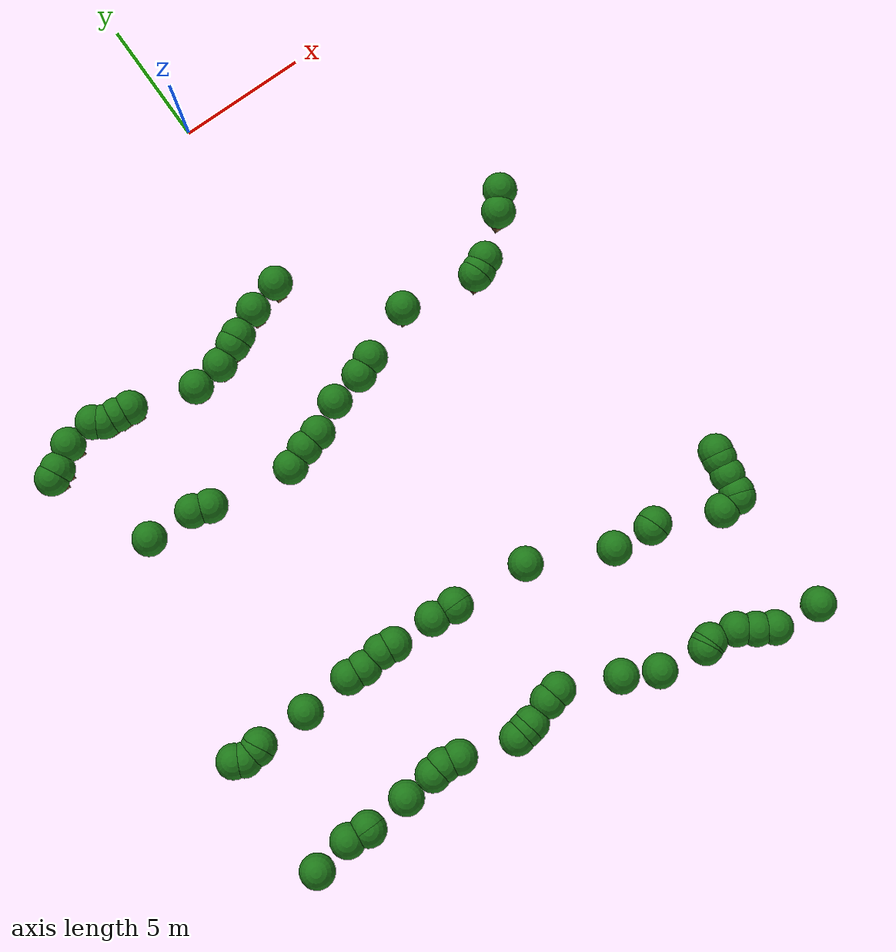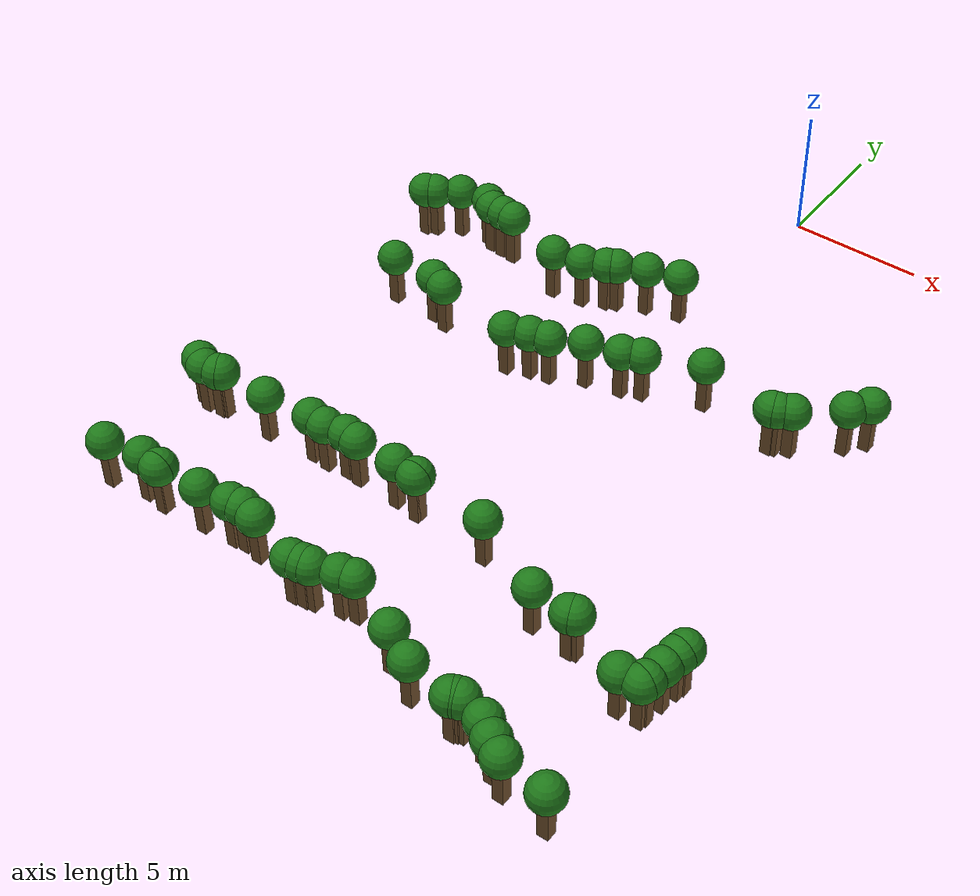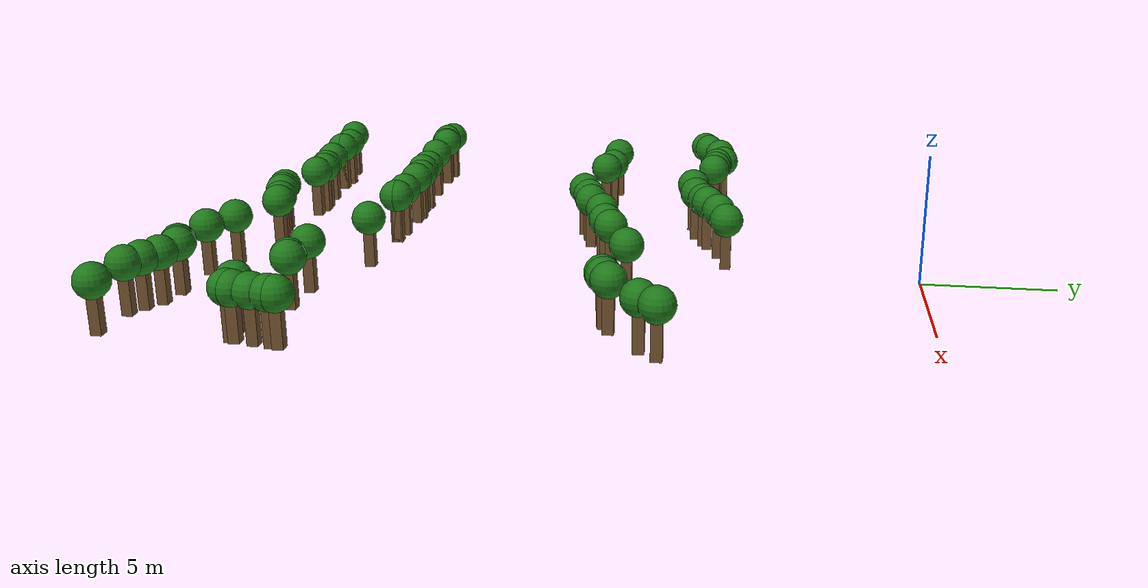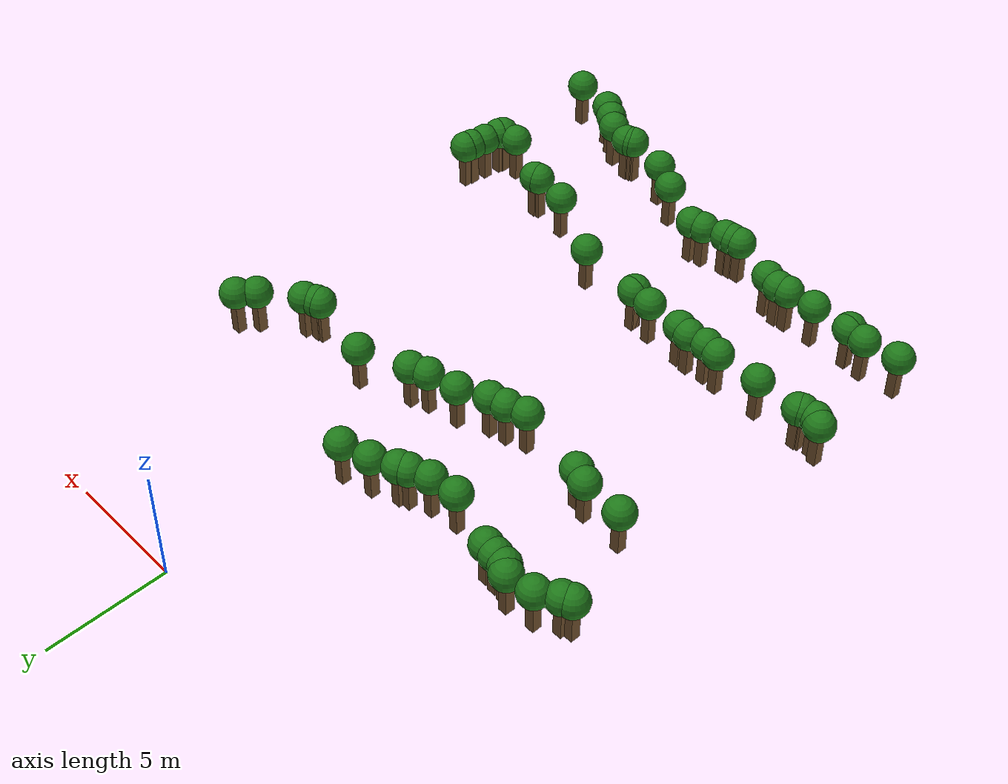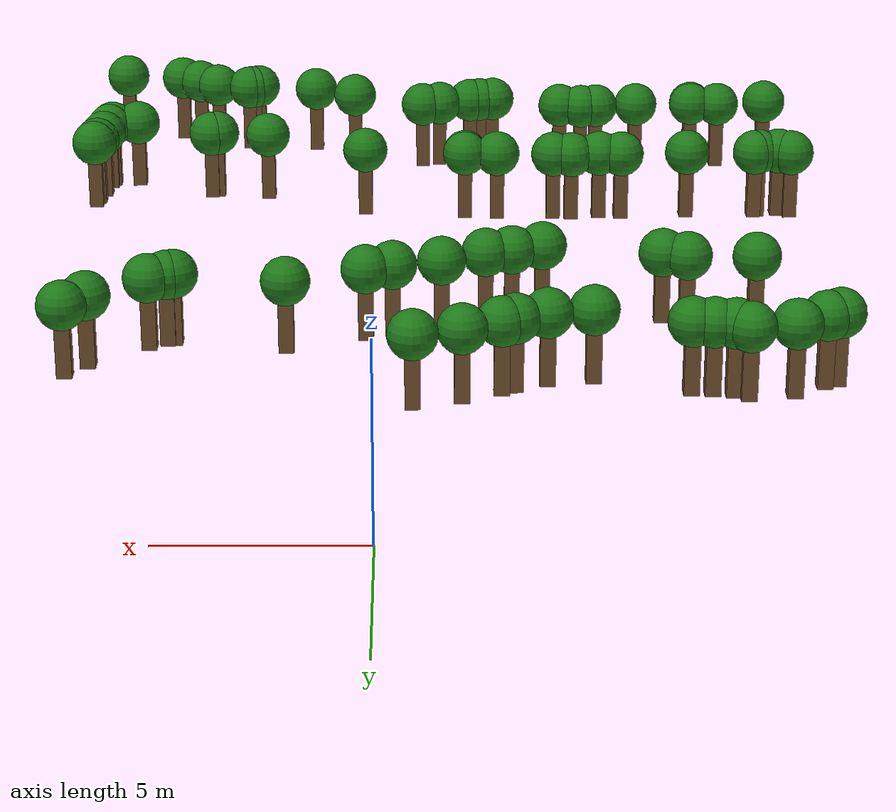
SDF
<sdf version="1.8">
 <model name="bush_trail_nav_walls">
  <static>true</static>
  <link name="trail_wall_294">
   <pose>-0.850 -7.361 0.750 0 0 0</pose>
   <collision name="c"><geometry><box><size>0.400 0.400 1.500</size></box></geometry></collision>
   <visual name="v">
    <geometry><box><size>0.400 0.400 1.500</size></box></geometry>
    <material><ambient>0.35 0.25 0.15 1</ambient><diffuse>0.45 0.32 0.18 1</diffuse></material>
   </visual>
   <visual name="leaves">
    <pose>0 0 1.200 0 0 0</pose>
    <geometry><sphere><radius>0.650</radius></sphere></geometry>
    <material><ambient>0.08 0.35 0.08 1</ambient><diffuse>0.12 0.48 0.10 1</diffuse></material>
   </visual>
  </link>
  <link name="trail_wall_297">
   <pose>-2.082 -7.713 0.750 0 0 0</pose>
   <collision name="c"><geometry><box><size>0.400 0.400 1.500</size></box></geometry></collision>
   <visual name="v">
    <geometry><box><size>0.400 0.400 1.500</size></box></geometry>
    <material><ambient>0.35 0.25 0.15 1</ambient><diffuse>0.45 0.32 0.18 1</diffuse></material>
   </visual>
   <visual name="leaves">
    <pose>0 0 1.200 0 0 0</pose>
    <geometry><sphere><radius>0.650</radius></sphere></geometry>
    <material><ambient>0.08 0.35 0.08 1</ambient><diffuse>0.12 0.48 0.10 1</diffuse></material>
   </visual>
  </link>
  <link name="trail_wall_298">
   <pose>-9.238 -7.771 0.750 0 0 0</pose>
   <collision name="c"><geometry><box><size>0.400 0.400 1.500</size></box></geometry></collision>
   <visual name="v">
    <geometry><box><size>0.400 0.400 1.500</size></box></geometry>
    <material><ambient>0.35 0.25 0.15 1</ambient><diffuse>0.45 0.32 0.18 1</diffuse></material>
   </visual>
   <visual name="leaves">
    <pose>0 0 1.200 0 0 0</pose>
    <geometry><sphere><radius>0.650</radius></sphere></geometry>
    <material><ambient>0.08 0.35 0.08 1</ambient><diffuse>0.12 0.48 0.10 1</diffuse></material>
   </visual>
  </link>
  <link name="trail_wall_300">
   <pose>-10.411 -7.947 0.750 0 0 0</pose>
   <collision name="c"><geometry><box><size>0.400 0.400 1.500</size></box></geometry></collision>
   <visual name="v">
    <geometry><box><size>0.400 0.400 1.500</size></box></geometry>
    <material><ambient>0.35 0.25 0.15 1</ambient><diffuse>0.45 0.32 0.18 1</diffuse></material>
   </visual>
   <visual name="leaves">
    <pose>0 0 1.200 0 0 0</pose>
    <geometry><sphere><radius>0.650</radius></sphere></geometry>
    <material><ambient>0.08 0.35 0.08 1</ambient><diffuse>0.12 0.48 0.10 1</diffuse></material>
   </visual>
  </link>
  <link name="trail_wall_301">
   <pose>-8.886 -8.006 0.750 0 0 0</pose>
   <collision name="c"><geometry><box><size>0.400 0.400 1.500</size></box></geometry></collision>
   <visual name="v">
    <geometry><box><size>0.400 0.400 1.500</size></box></geometry>
    <material><ambient>0.35 0.25 0.15 1</ambient><diffuse>0.45 0.32 0.18 1</diffuse></material>
   </visual>
   <visual name="leaves">
    <pose>0 0 1.200 0 0 0</pose>
    <geometry><sphere><radius>0.650</radius></sphere></geometry>
    <material><ambient>0.08 0.35 0.08 1</ambient><diffuse>0.12 0.48 0.10 1</diffuse></material>
   </visual>
  </link>
  <link name="trail_wall_302">
   <pose>-8.358 -8.065 0.750 0 0 0</pose>
   <collision name="c"><geometry><box><size>0.400 0.400 1.500</size></box></geometry></collision>
   <visual name="v">
    <geometry><box><size>0.400 0.400 1.500</size></box></geometry>
    <material><ambient>0.35 0.25 0.15 1</ambient><diffuse>0.45 0.32 0.18 1</diffuse></material>
   </visual>
   <visual name="leaves">
    <pose>0 0 1.200 0 0 0</pose>
    <geometry><sphere><radius>0.650</radius></sphere></geometry>
    <material><ambient>0.08 0.35 0.08 1</ambient><diffuse>0.12 0.48 0.10 1</diffuse></material>
   </visual>
  </link>
  <link name="trail_wall_303">
   <pose>-7.830 -8.123 0.750 0 0 0</pose>
   <collision name="c"><geometry><box><size>0.400 0.400 1.500</size></box></geometry></collision>
   <visual name="v">
    <geometry><box><size>0.400 0.400 1.500</size></box></geometry>
    <material><ambient>0.35 0.25 0.15 1</ambient><diffuse>0.45 0.32 0.18 1</diffuse></material>
   </visual>
   <visual name="leaves">
    <pose>0 0 1.200 0 0 0</pose>
    <geometry><sphere><radius>0.650</radius></sphere></geometry>
    <material><ambient>0.08 0.35 0.08 1</ambient><diffuse>0.12 0.48 0.10 1</diffuse></material>
   </visual>
  </link>
  <link name="trail_wall_304">
   <pose>-3.079 -8.182 0.750 0 0 0</pose>
   <collision name="c"><geometry><box><size>0.400 0.400 1.500</size></box></geometry></collision>
   <visual name="v">
    <geometry><box><size>0.400 0.400 1.500</size></box></geometry>
    <material><ambient>0.35 0.25 0.15 1</ambient><diffuse>0.45 0.32 0.18 1</diffuse></material>
   </visual>
   <visual name="leaves">
    <pose>0 0 1.200 0 0 0</pose>
    <geometry><sphere><radius>0.650</radius></sphere></geometry>
    <material><ambient>0.08 0.35 0.08 1</ambient><diffuse>0.12 0.48 0.10 1</diffuse></material>
   </visual>
  </link>
  <link name="trail_wall_306">
   <pose>-3.431 -8.358 0.750 0 0 0</pose>
   <collision name="c"><geometry><box><size>0.400 0.400 1.500</size></box></geometry></collision>
   <visual name="v">
    <geometry><box><size>0.400 0.400 1.500</size></box></geometry>
    <material><ambient>0.35 0.25 0.15 1</ambient><diffuse>0.45 0.32 0.18 1</diffuse></material>
   </visual>
   <visual name="leaves">
    <pose>0 0 1.200 0 0 0</pose>
    <geometry><sphere><radius>0.650</radius></sphere></geometry>
    <material><ambient>0.08 0.35 0.08 1</ambient><diffuse>0.12 0.48 0.10 1</diffuse></material>
   </visual>
  </link>
  <link name="trail_wall_307">
   <pose>-11.232 -8.475 0.750 0 0 0</pose>
   <collision name="c"><geometry><box><size>0.400 0.400 1.500</size></box></geometry></collision>
   <visual name="v">
    <geometry><box><size>0.400 0.400 1.500</size></box></geometry>
    <material><ambient>0.35 0.25 0.15 1</ambient><diffuse>0.45 0.32 0.18 1</diffuse></material>
   </visual>
   <visual name="leaves">
    <pose>0 0 1.200 0 0 0</pose>
    <geometry><sphere><radius>0.650</radius></sphere></geometry>
    <material><ambient>0.08 0.35 0.08 1</ambient><diffuse>0.12 0.48 0.10 1</diffuse></material>
   </visual>
  </link>
  <link name="trail_wall_309">
   <pose>-11.584 -8.651 0.750 0 0 0</pose>
   <collision name="c"><geometry><box><size>0.400 0.400 1.500</size></box></geometry></collision>
   <visual name="v">
    <geometry><box><size>0.400 0.400 1.500</size></box></geometry>
    <material><ambient>0.35 0.25 0.15 1</ambient><diffuse>0.45 0.32 0.18 1</diffuse></material>
   </visual>
   <visual name="leaves">
    <pose>0 0 1.200 0 0 0</pose>
    <geometry><sphere><radius>0.650</radius></sphere></geometry>
    <material><ambient>0.08 0.35 0.08 1</ambient><diffuse>0.12 0.48 0.10 1</diffuse></material>
   </visual>
  </link>
  <link name="trail_wall_310">
   <pose>-4.252 -8.710 0.750 0 0 0</pose>
   <collision name="c"><geometry><box><size>0.400 0.400 1.500</size></box></geometry></collision>
   <visual name="v">
    <geometry><box><size>0.400 0.400 1.500</size></box></geometry>
    <material><ambient>0.35 0.25 0.15 1</ambient><diffuse>0.45 0.32 0.18 1</diffuse></material>
   </visual>
   <visual name="leaves">
    <pose>0 0 1.200 0 0 0</pose>
    <geometry><sphere><radius>0.650</radius></sphere></geometry>
    <material><ambient>0.08 0.35 0.08 1</ambient><diffuse>0.12 0.48 0.10 1</diffuse></material>
   </visual>
  </link>
  <link name="trail_wall_312">
   <pose>-5.425 -8.886 0.750 0 0 0</pose>
   <collision name="c"><geometry><box><size>0.400 0.400 1.500</size></box></geometry></collision>
   <visual name="v">
    <geometry><box><size>0.400 0.400 1.500</size></box></geometry>
    <material><ambient>0.35 0.25 0.15 1</ambient><diffuse>0.45 0.32 0.18 1</diffuse></material>
   </visual>
   <visual name="leaves">
    <pose>0 0 1.200 0 0 0</pose>
    <geometry><sphere><radius>0.650</radius></sphere></geometry>
    <material><ambient>0.08 0.35 0.08 1</ambient><diffuse>0.12 0.48 0.10 1</diffuse></material>
   </visual>
  </link>
  <link name="trail_wall_316">
   <pose>8.006 -9.296 0.750 0 0 0</pose>
   <collision name="c"><geometry><box><size>0.400 0.400 1.500</size></box></geometry></collision>
   <visual name="v">
    <geometry><box><size>0.400 0.400 1.500</size></box></geometry>
    <material><ambient>0.35 0.25 0.15 1</ambient><diffuse>0.45 0.32 0.18 1</diffuse></material>
   </visual>
   <visual name="leaves">
    <pose>0 0 1.200 0 0 0</pose>
    <geometry><sphere><radius>0.650</radius></sphere></geometry>
    <material><ambient>0.08 0.35 0.08 1</ambient><diffuse>0.12 0.48 0.10 1</diffuse></material>
   </visual>
  </link>
  <link name="trail_wall_320">
   <pose>7.478 -9.941 0.750 0 0 0</pose>
   <collision name="c"><geometry><box><size>0.400 0.400 1.500</size></box></geometry></collision>
   <visual name="v">
    <geometry><box><size>0.400 0.400 1.500</size></box></geometry>
    <material><ambient>0.35 0.25 0.15 1</ambient><diffuse>0.45 0.32 0.18 1</diffuse></material>
   </visual>
   <visual name="leaves">
    <pose>0 0 1.200 0 0 0</pose>
    <geometry><sphere><radius>0.650</radius></sphere></geometry>
    <material><ambient>0.08 0.35 0.08 1</ambient><diffuse>0.12 0.48 0.10 1</diffuse></material>
   </visual>
  </link>
  <link name="trail_wall_327">
   <pose>2.434 -10.880 0.750 0 0 0</pose>
   <collision name="c"><geometry><box><size>0.400 0.400 1.500</size></box></geometry></collision>
   <visual name="v">
    <geometry><box><size>0.400 0.400 1.500</size></box></geometry>
    <material><ambient>0.35 0.25 0.15 1</ambient><diffuse>0.45 0.32 0.18 1</diffuse></material>
   </visual>
   <visual name="leaves">
    <pose>0 0 1.200 0 0 0</pose>
    <geometry><sphere><radius>0.650</radius></sphere></geometry>
    <material><ambient>0.08 0.35 0.08 1</ambient><diffuse>0.12 0.48 0.10 1</diffuse></material>
   </visual>
  </link>
  <link name="trail_wall_330">
   <pose>6.012 -11.114 0.750 0 0 0</pose>
   <collision name="c"><geometry><box><size>0.400 0.400 1.500</size></box></geometry></collision>
   <visual name="v">
    <geometry><box><size>0.400 0.400 1.500</size></box></geometry>
    <material><ambient>0.35 0.25 0.15 1</ambient><diffuse>0.45 0.32 0.18 1</diffuse></material>
   </visual>
   <visual name="leaves">
    <pose>0 0 1.200 0 0 0</pose>
    <geometry><sphere><radius>0.650</radius></sphere></geometry>
    <material><ambient>0.08 0.35 0.08 1</ambient><diffuse>0.12 0.48 0.10 1</diffuse></material>
   </visual>
  </link>
  <link name="trail_wall_334">
   <pose>5.543 -11.349 0.750 0 0 0</pose>
   <collision name="c"><geometry><box><size>0.400 0.400 1.500</size></box></geometry></collision>
   <visual name="v">
    <geometry><box><size>0.400 0.400 1.500</size></box></geometry>
    <material><ambient>0.35 0.25 0.15 1</ambient><diffuse>0.45 0.32 0.18 1</diffuse></material>
   </visual>
   <visual name="leaves">
    <pose>0 0 1.200 0 0 0</pose>
    <geometry><sphere><radius>0.650</radius></sphere></geometry>
    <material><ambient>0.08 0.35 0.08 1</ambient><diffuse>0.12 0.48 0.10 1</diffuse></material>
   </visual>
  </link>
  <link name="trail_wall_335">
   <pose>5.367 -11.408 0.750 0 0 0</pose>
   <collision name="c"><geometry><box><size>0.400 0.400 1.500</size></box></geometry></collision>
   <visual name="v">
    <geometry><box><size>0.400 0.400 1.500</size></box></geometry>
    <material><ambient>0.35 0.25 0.15 1</ambient><diffuse>0.45 0.32 0.18 1</diffuse></material>
   </visual>
   <visual name="leaves">
    <pose>0 0 1.200 0 0 0</pose>
    <geometry><sphere><radius>0.650</radius></sphere></geometry>
    <material><ambient>0.08 0.35 0.08 1</ambient><diffuse>0.12 0.48 0.10 1</diffuse></material>
   </visual>
  </link>
  <link name="trail_wall_337">
   <pose>0.381 -11.701 0.750 0 0 0</pose>
   <collision name="c"><geometry><box><size>0.400 0.400 1.500</size></box></geometry></collision>
   <visual name="v">
    <geometry><box><size>0.400 0.400 1.500</size></box></geometry>
    <material><ambient>0.35 0.25 0.15 1</ambient><diffuse>0.45 0.32 0.18 1</diffuse></material>
   </visual>
   <visual name="leaves">
    <pose>0 0 1.200 0 0 0</pose>
    <geometry><sphere><radius>0.650</radius></sphere></geometry>
    <material><ambient>0.08 0.35 0.08 1</ambient><diffuse>0.12 0.48 0.10 1</diffuse></material>
   </visual>
  </link>
  <link name="trail_wall_339">
   <pose>-0.323 -11.994 0.750 0 0 0</pose>
   <collision name="c"><geometry><box><size>0.400 0.400 1.500</size></box></geometry></collision>
   <visual name="v">
    <geometry><box><size>0.400 0.400 1.500</size></box></geometry>
    <material><ambient>0.35 0.25 0.15 1</ambient><diffuse>0.45 0.32 0.18 1</diffuse></material>
   </visual>
   <visual name="leaves">
    <pose>0 0 1.200 0 0 0</pose>
    <geometry><sphere><radius>0.650</radius></sphere></geometry>
    <material><ambient>0.08 0.35 0.08 1</ambient><diffuse>0.12 0.48 0.10 1</diffuse></material>
   </visual>
  </link>
  <link name="trail_wall_342">
   <pose>-1.613 -12.287 0.750 0 0 0</pose>
   <collision name="c"><geometry><box><size>0.400 0.400 1.500</size></box></geometry></collision>
   <visual name="v">
    <geometry><box><size>0.400 0.400 1.500</size></box></geometry>
    <material><ambient>0.35 0.25 0.15 1</ambient><diffuse>0.45 0.32 0.18 1</diffuse></material>
   </visual>
   <visual name="leaves">
    <pose>0 0 1.200 0 0 0</pose>
    <geometry><sphere><radius>0.650</radius></sphere></geometry>
    <material><ambient>0.08 0.35 0.08 1</ambient><diffuse>0.12 0.48 0.10 1</diffuse></material>
   </visual>
  </link>
  <link name="trail_wall_345">
   <pose>-9.941 -12.522 0.750 0 0 0</pose>
   <collision name="c"><geometry><box><size>0.400 0.400 1.500</size></box></geometry></collision>
   <visual name="v">
    <geometry><box><size>0.400 0.400 1.500</size></box></geometry>
    <material><ambient>0.35 0.25 0.15 1</ambient><diffuse>0.45 0.32 0.18 1</diffuse></material>
   </visual>
   <visual name="leaves">
    <pose>0 0 1.200 0 0 0</pose>
    <geometry><sphere><radius>0.650</radius></sphere></geometry>
    <material><ambient>0.08 0.35 0.08 1</ambient><diffuse>0.12 0.48 0.10 1</diffuse></material>
   </visual>
  </link>
  <link name="trail_wall_346">
   <pose>-8.123 -12.581 0.750 0 0 0</pose>
   <collision name="c"><geometry><box><size>0.400 0.400 1.500</size></box></geometry></collision>
   <visual name="v">
    <geometry><box><size>0.400 0.400 1.500</size></box></geometry>
    <material><ambient>0.35 0.25 0.15 1</ambient><diffuse>0.45 0.32 0.18 1</diffuse></material>
   </visual>
   <visual name="leaves">
    <pose>0 0 1.200 0 0 0</pose>
    <geometry><sphere><radius>0.650</radius></sphere></geometry>
    <material><ambient>0.08 0.35 0.08 1</ambient><diffuse>0.12 0.48 0.10 1</diffuse></material>
   </visual>
  </link>
  <link name="trail_wall_349">
   <pose>-7.478 -12.815 0.750 0 0 0</pose>
   <collision name="c"><geometry><box><size>0.400 0.400 1.500</size></box></geometry></collision>
   <visual name="v">
    <geometry><box><size>0.400 0.400 1.500</size></box></geometry>
    <material><ambient>0.35 0.25 0.15 1</ambient><diffuse>0.45 0.32 0.18 1</diffuse></material>
   </visual>
   <visual name="leaves">
    <pose>0 0 1.200 0 0 0</pose>
    <geometry><sphere><radius>0.650</radius></sphere></geometry>
    <material><ambient>0.08 0.35 0.08 1</ambient><diffuse>0.12 0.48 0.10 1</diffuse></material>
   </visual>
  </link>
  <link name="trail_wall_350">
   <pose>-2.786 -12.874 0.750 0 0 0</pose>
   <collision name="c"><geometry><box><size>0.400 0.400 1.500</size></box></geometry></collision>
   <visual name="v">
    <geometry><box><size>0.400 0.400 1.500</size></box></geometry>
    <material><ambient>0.35 0.25 0.15 1</ambient><diffuse>0.45 0.32 0.18 1</diffuse></material>
   </visual>
   <visual name="leaves">
    <pose>0 0 1.200 0 0 0</pose>
    <geometry><sphere><radius>0.650</radius></sphere></geometry>
    <material><ambient>0.08 0.35 0.08 1</ambient><diffuse>0.12 0.48 0.10 1</diffuse></material>
   </visual>
  </link>
  <link name="trail_wall_352">
   <pose>-3.490 -13.050 0.750 0 0 0</pose>
   <collision name="c"><geometry><box><size>0.400 0.400 1.500</size></box></geometry></collision>
   <visual name="v">
    <geometry><box><size>0.400 0.400 1.500</size></box></geometry>
    <material><ambient>0.35 0.25 0.15 1</ambient><diffuse>0.45 0.32 0.18 1</diffuse></material>
   </visual>
   <visual name="leaves">
    <pose>0 0 1.200 0 0 0</pose>
    <geometry><sphere><radius>0.650</radius></sphere></geometry>
    <material><ambient>0.08 0.35 0.08 1</ambient><diffuse>0.12 0.48 0.10 1</diffuse></material>
   </visual>
  </link>
  <link name="trail_wall_357">
   <pose>-4.311 -13.343 0.750 0 0 0</pose>
   <collision name="c"><geometry><box><size>0.400 0.400 1.500</size></box></geometry></collision>
   <visual name="v">
    <geometry><box><size>0.400 0.400 1.500</size></box></geometry>
    <material><ambient>0.35 0.25 0.15 1</ambient><diffuse>0.45 0.32 0.18 1</diffuse></material>
   </visual>
   <visual name="leaves">
    <pose>0 0 1.200 0 0 0</pose>
    <geometry><sphere><radius>0.650</radius></sphere></geometry>
    <material><ambient>0.08 0.35 0.08 1</ambient><diffuse>0.12 0.48 0.10 1</diffuse></material>
   </visual>
  </link>
  <link name="trail_wall_419">
   <pose>-5.484 -20.674 0.750 0 0 0</pose>
   <collision name="c"><geometry><box><size>0.400 0.400 1.500</size></box></geometry></collision>
   <visual name="v">
    <geometry><box><size>0.400 0.400 1.500</size></box></geometry>
    <material><ambient>0.35 0.25 0.15 1</ambient><diffuse>0.45 0.32 0.18 1</diffuse></material>
   </visual>
   <visual name="leaves">
    <pose>0 0 1.200 0 0 0</pose>
    <geometry><sphere><radius>0.650</radius></sphere></geometry>
    <material><ambient>0.08 0.35 0.08 1</ambient><diffuse>0.12 0.48 0.10 1</diffuse></material>
   </visual>
  </link>
  <link name="trail_wall_420">
   <pose>-6.950 -20.733 0.750 0 0 0</pose>
   <collision name="c"><geometry><box><size>0.400 0.400 1.500</size></box></geometry></collision>
   <visual name="v">
    <geometry><box><size>0.400 0.400 1.500</size></box></geometry>
    <material><ambient>0.35 0.25 0.15 1</ambient><diffuse>0.45 0.32 0.18 1</diffuse></material>
   </visual>
   <visual name="leaves">
    <pose>0 0 1.200 0 0 0</pose>
    <geometry><sphere><radius>0.650</radius></sphere></geometry>
    <material><ambient>0.08 0.35 0.08 1</ambient><diffuse>0.12 0.48 0.10 1</diffuse></material>
   </visual>
  </link>
  <link name="trail_wall_421">
   <pose>-4.956 -20.733 0.750 0 0 0</pose>
   <collision name="c"><geometry><box><size>0.400 0.400 1.500</size></box></geometry></collision>
   <visual name="v">
    <geometry><box><size>0.400 0.400 1.500</size></box></geometry>
    <material><ambient>0.35 0.25 0.15 1</ambient><diffuse>0.45 0.32 0.18 1</diffuse></material>
   </visual>
   <visual name="leaves">
    <pose>0 0 1.200 0 0 0</pose>
    <geometry><sphere><radius>0.650</radius></sphere></geometry>
    <material><ambient>0.08 0.35 0.08 1</ambient><diffuse>0.12 0.48 0.10 1</diffuse></material>
   </visual>
  </link>
  <link name="trail_wall_422">
   <pose>-11.935 -20.792 0.750 0 0 0</pose>
   <collision name="c"><geometry><box><size>0.400 0.400 1.500</size></box></geometry></collision>
   <visual name="v">
    <geometry><box><size>0.400 0.400 1.500</size></box></geometry>
    <material><ambient>0.35 0.25 0.15 1</ambient><diffuse>0.45 0.32 0.18 1</diffuse></material>
   </visual>
   <visual name="leaves">
    <pose>0 0 1.200 0 0 0</pose>
    <geometry><sphere><radius>0.650</radius></sphere></geometry>
    <material><ambient>0.08 0.35 0.08 1</ambient><diffuse>0.12 0.48 0.10 1</diffuse></material>
   </visual>
  </link>
  <link name="trail_wall_423">
   <pose>-6.305 -20.792 0.750 0 0 0</pose>
   <collision name="c"><geometry><box><size>0.400 0.400 1.500</size></box></geometry></collision>
   <visual name="v">
    <geometry><box><size>0.400 0.400 1.500</size></box></geometry>
    <material><ambient>0.35 0.25 0.15 1</ambient><diffuse>0.45 0.32 0.18 1</diffuse></material>
   </visual>
   <visual name="leaves">
    <pose>0 0 1.200 0 0 0</pose>
    <geometry><sphere><radius>0.650</radius></sphere></geometry>
    <material><ambient>0.08 0.35 0.08 1</ambient><diffuse>0.12 0.48 0.10 1</diffuse></material>
   </visual>
  </link>
  <link name="trail_wall_424">
   <pose>-3.314 -20.792 0.750 0 0 0</pose>
   <collision name="c"><geometry><box><size>0.400 0.400 1.500</size></box></geometry></collision>
   <visual name="v">
    <geometry><box><size>0.400 0.400 1.500</size></box></geometry>
    <material><ambient>0.35 0.25 0.15 1</ambient><diffuse>0.45 0.32 0.18 1</diffuse></material>
   </visual>
   <visual name="leaves">
    <pose>0 0 1.200 0 0 0</pose>
    <geometry><sphere><radius>0.650</radius></sphere></geometry>
    <material><ambient>0.08 0.35 0.08 1</ambient><diffuse>0.12 0.48 0.10 1</diffuse></material>
   </visual>
  </link>
  <link name="trail_wall_425">
   <pose>-10.880 -20.850 0.750 0 0 0</pose>
   <collision name="c"><geometry><box><size>0.400 0.400 1.500</size></box></geometry></collision>
   <visual name="v">
    <geometry><box><size>0.400 0.400 1.500</size></box></geometry>
    <material><ambient>0.35 0.25 0.15 1</ambient><diffuse>0.45 0.32 0.18 1</diffuse></material>
   </visual>
   <visual name="leaves">
    <pose>0 0 1.200 0 0 0</pose>
    <geometry><sphere><radius>0.650</radius></sphere></geometry>
    <material><ambient>0.08 0.35 0.08 1</ambient><diffuse>0.12 0.48 0.10 1</diffuse></material>
   </visual>
  </link>
  <link name="trail_wall_426">
   <pose>-8.886 -20.850 0.750 0 0 0</pose>
   <collision name="c"><geometry><box><size>0.400 0.400 1.500</size></box></geometry></collision>
   <visual name="v">
    <geometry><box><size>0.400 0.400 1.500</size></box></geometry>
    <material><ambient>0.35 0.25 0.15 1</ambient><diffuse>0.45 0.32 0.18 1</diffuse></material>
   </visual>
   <visual name="leaves">
    <pose>0 0 1.200 0 0 0</pose>
    <geometry><sphere><radius>0.650</radius></sphere></geometry>
    <material><ambient>0.08 0.35 0.08 1</ambient><diffuse>0.12 0.48 0.10 1</diffuse></material>
   </visual>
  </link>
  <link name="trail_wall_427">
   <pose>-2.375 -20.850 0.750 0 0 0</pose>
   <collision name="c"><geometry><box><size>0.400 0.400 1.500</size></box></geometry></collision>
   <visual name="v">
    <geometry><box><size>0.400 0.400 1.500</size></box></geometry>
    <material><ambient>0.35 0.25 0.15 1</ambient><diffuse>0.45 0.32 0.18 1</diffuse></material>
   </visual>
   <visual name="leaves">
    <pose>0 0 1.200 0 0 0</pose>
    <geometry><sphere><radius>0.650</radius></sphere></geometry>
    <material><ambient>0.08 0.35 0.08 1</ambient><diffuse>0.12 0.48 0.10 1</diffuse></material>
   </visual>
  </link>
  <link name="trail_wall_428">
   <pose>-10.997 -20.909 0.750 0 0 0</pose>
   <collision name="c"><geometry><box><size>0.400 0.400 1.500</size></box></geometry></collision>
   <visual name="v">
    <geometry><box><size>0.400 0.400 1.500</size></box></geometry>
    <material><ambient>0.35 0.25 0.15 1</ambient><diffuse>0.45 0.32 0.18 1</diffuse></material>
   </visual>
   <visual name="leaves">
    <pose>0 0 1.200 0 0 0</pose>
    <geometry><sphere><radius>0.650</radius></sphere></geometry>
    <material><ambient>0.08 0.35 0.08 1</ambient><diffuse>0.12 0.48 0.10 1</diffuse></material>
   </visual>
  </link>
  <link name="trail_wall_429">
   <pose>-2.375 -20.909 0.750 0 0 0</pose>
   <collision name="c"><geometry><box><size>0.400 0.400 1.500</size></box></geometry></collision>
   <visual name="v">
    <geometry><box><size>0.400 0.400 1.500</size></box></geometry>
    <material><ambient>0.35 0.25 0.15 1</ambient><diffuse>0.45 0.32 0.18 1</diffuse></material>
   </visual>
   <visual name="leaves">
    <pose>0 0 1.200 0 0 0</pose>
    <geometry><sphere><radius>0.650</radius></sphere></geometry>
    <material><ambient>0.08 0.35 0.08 1</ambient><diffuse>0.12 0.48 0.10 1</diffuse></material>
   </visual>
  </link>
  <link name="trail_wall_430">
   <pose>-11.584 -20.968 0.750 0 0 0</pose>
   <collision name="c"><geometry><box><size>0.400 0.400 1.500</size></box></geometry></collision>
   <visual name="v">
    <geometry><box><size>0.400 0.400 1.500</size></box></geometry>
    <material><ambient>0.35 0.25 0.15 1</ambient><diffuse>0.45 0.32 0.18 1</diffuse></material>
   </visual>
   <visual name="leaves">
    <pose>0 0 1.200 0 0 0</pose>
    <geometry><sphere><radius>0.650</radius></sphere></geometry>
    <material><ambient>0.08 0.35 0.08 1</ambient><diffuse>0.12 0.48 0.10 1</diffuse></material>
   </visual>
  </link>
  <link name="trail_wall_433">
   <pose>0.557 -21.144 0.750 0 0 0</pose>
   <collision name="c"><geometry><box><size>0.400 0.400 1.500</size></box></geometry></collision>
   <visual name="v">
    <geometry><box><size>0.400 0.400 1.500</size></box></geometry>
    <material><ambient>0.35 0.25 0.15 1</ambient><diffuse>0.45 0.32 0.18 1</diffuse></material>
   </visual>
   <visual name="leaves">
    <pose>0 0 1.200 0 0 0</pose>
    <geometry><sphere><radius>0.650</radius></sphere></geometry>
    <material><ambient>0.08 0.35 0.08 1</ambient><diffuse>0.12 0.48 0.10 1</diffuse></material>
   </visual>
  </link>
  <link name="trail_wall_438">
   <pose>8.592 -21.848 0.750 0 0 0</pose>
   <collision name="c"><geometry><box><size>0.400 0.400 1.500</size></box></geometry></collision>
   <visual name="v">
    <geometry><box><size>0.400 0.400 1.500</size></box></geometry>
    <material><ambient>0.35 0.25 0.15 1</ambient><diffuse>0.45 0.32 0.18 1</diffuse></material>
   </visual>
   <visual name="leaves">
    <pose>0 0 1.200 0 0 0</pose>
    <geometry><sphere><radius>0.650</radius></sphere></geometry>
    <material><ambient>0.08 0.35 0.08 1</ambient><diffuse>0.12 0.48 0.10 1</diffuse></material>
   </visual>
  </link>
  <link name="trail_wall_440">
   <pose>8.534 -22.141 0.750 0 0 0</pose>
   <collision name="c"><geometry><box><size>0.400 0.400 1.500</size></box></geometry></collision>
   <visual name="v">
    <geometry><box><size>0.400 0.400 1.500</size></box></geometry>
    <material><ambient>0.35 0.25 0.15 1</ambient><diffuse>0.45 0.32 0.18 1</diffuse></material>
   </visual>
   <visual name="leaves">
    <pose>0 0 1.200 0 0 0</pose>
    <geometry><sphere><radius>0.650</radius></sphere></geometry>
    <material><ambient>0.08 0.35 0.08 1</ambient><diffuse>0.12 0.48 0.10 1</diffuse></material>
   </visual>
  </link>
  <link name="trail_wall_443">
   <pose>3.490 -22.551 0.750 0 0 0</pose>
   <collision name="c"><geometry><box><size>0.400 0.400 1.500</size></box></geometry></collision>
   <visual name="v">
    <geometry><box><size>0.400 0.400 1.500</size></box></geometry>
    <material><ambient>0.35 0.25 0.15 1</ambient><diffuse>0.45 0.32 0.18 1</diffuse></material>
   </visual>
   <visual name="leaves">
    <pose>0 0 1.200 0 0 0</pose>
    <geometry><sphere><radius>0.650</radius></sphere></geometry>
    <material><ambient>0.08 0.35 0.08 1</ambient><diffuse>0.12 0.48 0.10 1</diffuse></material>
   </visual>
  </link>
  <link name="trail_wall_445">
   <pose>5.191 -22.669 0.750 0 0 0</pose>
   <collision name="c"><geometry><box><size>0.400 0.400 1.500</size></box></geometry></collision>
   <visual name="v">
    <geometry><box><size>0.400 0.400 1.500</size></box></geometry>
    <material><ambient>0.35 0.25 0.15 1</ambient><diffuse>0.45 0.32 0.18 1</diffuse></material>
   </visual>
   <visual name="leaves">
    <pose>0 0 1.200 0 0 0</pose>
    <geometry><sphere><radius>0.650</radius></sphere></geometry>
    <material><ambient>0.08 0.35 0.08 1</ambient><diffuse>0.12 0.48 0.10 1</diffuse></material>
   </visual>
  </link>
  <link name="trail_wall_446">
   <pose>5.015 -22.727 0.750 0 0 0</pose>
   <collision name="c"><geometry><box><size>0.400 0.400 1.500</size></box></geometry></collision>
   <visual name="v">
    <geometry><box><size>0.400 0.400 1.500</size></box></geometry>
    <material><ambient>0.35 0.25 0.15 1</ambient><diffuse>0.45 0.32 0.18 1</diffuse></material>
   </visual>
   <visual name="leaves">
    <pose>0 0 1.200 0 0 0</pose>
    <geometry><sphere><radius>0.650</radius></sphere></geometry>
    <material><ambient>0.08 0.35 0.08 1</ambient><diffuse>0.12 0.48 0.10 1</diffuse></material>
   </visual>
  </link>
  <link name="trail_wall_447">
   <pose>8.416 -22.786 0.750 0 0 0</pose>
   <collision name="c"><geometry><box><size>0.400 0.400 1.500</size></box></geometry></collision>
   <visual name="v">
    <geometry><box><size>0.400 0.400 1.500</size></box></geometry>
    <material><ambient>0.35 0.25 0.15 1</ambient><diffuse>0.45 0.32 0.18 1</diffuse></material>
   </visual>
   <visual name="leaves">
    <pose>0 0 1.200 0 0 0</pose>
    <geometry><sphere><radius>0.650</radius></sphere></geometry>
    <material><ambient>0.08 0.35 0.08 1</ambient><diffuse>0.12 0.48 0.10 1</diffuse></material>
   </visual>
  </link>
  <link name="trail_wall_454">
   <pose>8.299 -23.490 0.750 0 0 0</pose>
   <collision name="c"><geometry><box><size>0.400 0.400 1.500</size></box></geometry></collision>
   <visual name="v">
    <geometry><box><size>0.400 0.400 1.500</size></box></geometry>
    <material><ambient>0.35 0.25 0.15 1</ambient><diffuse>0.45 0.32 0.18 1</diffuse></material>
   </visual>
   <visual name="leaves">
    <pose>0 0 1.200 0 0 0</pose>
    <geometry><sphere><radius>0.650</radius></sphere></geometry>
    <material><ambient>0.08 0.35 0.08 1</ambient><diffuse>0.12 0.48 0.10 1</diffuse></material>
   </visual>
  </link>
  <link name="trail_wall_457">
   <pose>8.240 -23.666 0.750 0 0 0</pose>
   <collision name="c"><geometry><box><size>0.400 0.400 1.500</size></box></geometry></collision>
   <visual name="v">
    <geometry><box><size>0.400 0.400 1.500</size></box></geometry>
    <material><ambient>0.35 0.25 0.15 1</ambient><diffuse>0.45 0.32 0.18 1</diffuse></material>
   </visual>
   <visual name="leaves">
    <pose>0 0 1.200 0 0 0</pose>
    <geometry><sphere><radius>0.650</radius></sphere></geometry>
    <material><ambient>0.08 0.35 0.08 1</ambient><diffuse>0.12 0.48 0.10 1</diffuse></material>
   </visual>
  </link>
  <link name="trail_wall_458">
   <pose>7.478 -23.724 0.750 0 0 0</pose>
   <collision name="c"><geometry><box><size>0.400 0.400 1.500</size></box></geometry></collision>
   <visual name="v">
    <geometry><box><size>0.400 0.400 1.500</size></box></geometry>
    <material><ambient>0.35 0.25 0.15 1</ambient><diffuse>0.45 0.32 0.18 1</diffuse></material>
   </visual>
   <visual name="leaves">
    <pose>0 0 1.200 0 0 0</pose>
    <geometry><sphere><radius>0.650</radius></sphere></geometry>
    <material><ambient>0.08 0.35 0.08 1</ambient><diffuse>0.12 0.48 0.10 1</diffuse></material>
   </visual>
  </link>
  <link name="trail_wall_469">
   <pose>-6.012 -25.191 0.750 0 0 0</pose>
   <collision name="c"><geometry><box><size>0.400 0.400 1.500</size></box></geometry></collision>
   <visual name="v">
    <geometry><box><size>0.400 0.400 1.500</size></box></geometry>
    <material><ambient>0.35 0.25 0.15 1</ambient><diffuse>0.45 0.32 0.18 1</diffuse></material>
   </visual>
   <visual name="leaves">
    <pose>0 0 1.200 0 0 0</pose>
    <geometry><sphere><radius>0.650</radius></sphere></geometry>
    <material><ambient>0.08 0.35 0.08 1</ambient><diffuse>0.12 0.48 0.10 1</diffuse></material>
   </visual>
  </link>
  <link name="trail_wall_470">
   <pose>-6.481 -25.249 0.750 0 0 0</pose>
   <collision name="c"><geometry><box><size>0.400 0.400 1.500</size></box></geometry></collision>
   <visual name="v">
    <geometry><box><size>0.400 0.400 1.500</size></box></geometry>
    <material><ambient>0.35 0.25 0.15 1</ambient><diffuse>0.45 0.32 0.18 1</diffuse></material>
   </visual>
   <visual name="leaves">
    <pose>0 0 1.200 0 0 0</pose>
    <geometry><sphere><radius>0.650</radius></sphere></geometry>
    <material><ambient>0.08 0.35 0.08 1</ambient><diffuse>0.12 0.48 0.10 1</diffuse></material>
   </visual>
  </link>
  <link name="trail_wall_472">
   <pose>-5.367 -25.308 0.750 0 0 0</pose>
   <collision name="c"><geometry><box><size>0.400 0.400 1.500</size></box></geometry></collision>
   <visual name="v">
    <geometry><box><size>0.400 0.400 1.500</size></box></geometry>
    <material><ambient>0.35 0.25 0.15 1</ambient><diffuse>0.45 0.32 0.18 1</diffuse></material>
   </visual>
   <visual name="leaves">
    <pose>0 0 1.200 0 0 0</pose>
    <geometry><sphere><radius>0.650</radius></sphere></geometry>
    <material><ambient>0.08 0.35 0.08 1</ambient><diffuse>0.12 0.48 0.10 1</diffuse></material>
   </visual>
  </link>
  <link name="trail_wall_473">
   <pose>-10.235 -25.367 0.750 0 0 0</pose>
   <collision name="c"><geometry><box><size>0.400 0.400 1.500</size></box></geometry></collision>
   <visual name="v">
    <geometry><box><size>0.400 0.400 1.500</size></box></geometry>
    <material><ambient>0.35 0.25 0.15 1</ambient><diffuse>0.45 0.32 0.18 1</diffuse></material>
   </visual>
   <visual name="leaves">
    <pose>0 0 1.200 0 0 0</pose>
    <geometry><sphere><radius>0.650</radius></sphere></geometry>
    <material><ambient>0.08 0.35 0.08 1</ambient><diffuse>0.12 0.48 0.10 1</diffuse></material>
   </visual>
  </link>
  <link name="trail_wall_474">
   <pose>-7.713 -25.367 0.750 0 0 0</pose>
   <collision name="c"><geometry><box><size>0.400 0.400 1.500</size></box></geometry></collision>
   <visual name="v">
    <geometry><box><size>0.400 0.400 1.500</size></box></geometry>
    <material><ambient>0.35 0.25 0.15 1</ambient><diffuse>0.45 0.32 0.18 1</diffuse></material>
   </visual>
   <visual name="leaves">
    <pose>0 0 1.200 0 0 0</pose>
    <geometry><sphere><radius>0.650</radius></sphere></geometry>
    <material><ambient>0.08 0.35 0.08 1</ambient><diffuse>0.12 0.48 0.10 1</diffuse></material>
   </visual>
  </link>
  <link name="trail_wall_476">
   <pose>-9.413 -25.425 0.750 0 0 0</pose>
   <collision name="c"><geometry><box><size>0.400 0.400 1.500</size></box></geometry></collision>
   <visual name="v">
    <geometry><box><size>0.400 0.400 1.500</size></box></geometry>
    <material><ambient>0.35 0.25 0.15 1</ambient><diffuse>0.45 0.32 0.18 1</diffuse></material>
   </visual>
   <visual name="leaves">
    <pose>0 0 1.200 0 0 0</pose>
    <geometry><sphere><radius>0.650</radius></sphere></geometry>
    <material><ambient>0.08 0.35 0.08 1</ambient><diffuse>0.12 0.48 0.10 1</diffuse></material>
   </visual>
  </link>
  <link name="trail_wall_477">
   <pose>-1.144 -25.425 0.750 0 0 0</pose>
   <collision name="c"><geometry><box><size>0.400 0.400 1.500</size></box></geometry></collision>
   <visual name="v">
    <geometry><box><size>0.400 0.400 1.500</size></box></geometry>
    <material><ambient>0.35 0.25 0.15 1</ambient><diffuse>0.45 0.32 0.18 1</diffuse></material>
   </visual>
   <visual name="leaves">
    <pose>0 0 1.200 0 0 0</pose>
    <geometry><sphere><radius>0.650</radius></sphere></geometry>
    <material><ambient>0.08 0.35 0.08 1</ambient><diffuse>0.12 0.48 0.10 1</diffuse></material>
   </visual>
  </link>
  <link name="trail_wall_478">
   <pose>-9.413 -25.484 0.750 0 0 0</pose>
   <collision name="c"><geometry><box><size>0.400 0.400 1.500</size></box></geometry></collision>
   <visual name="v">
    <geometry><box><size>0.400 0.400 1.500</size></box></geometry>
    <material><ambient>0.35 0.25 0.15 1</ambient><diffuse>0.45 0.32 0.18 1</diffuse></material>
   </visual>
   <visual name="leaves">
    <pose>0 0 1.200 0 0 0</pose>
    <geometry><sphere><radius>0.650</radius></sphere></geometry>
    <material><ambient>0.08 0.35 0.08 1</ambient><diffuse>0.12 0.48 0.10 1</diffuse></material>
   </visual>
  </link>
  <link name="trail_wall_480">
   <pose>-1.672 -25.543 0.750 0 0 0</pose>
   <collision name="c"><geometry><box><size>0.400 0.400 1.500</size></box></geometry></collision>
   <visual name="v">
    <geometry><box><size>0.400 0.400 1.500</size></box></geometry>
    <material><ambient>0.35 0.25 0.15 1</ambient><diffuse>0.45 0.32 0.18 1</diffuse></material>
   </visual>
   <visual name="leaves">
    <pose>0 0 1.200 0 0 0</pose>
    <geometry><sphere><radius>0.650</radius></sphere></geometry>
    <material><ambient>0.08 0.35 0.08 1</ambient><diffuse>0.12 0.48 0.10 1</diffuse></material>
   </visual>
  </link>
  <link name="trail_wall_481">
   <pose>-11.701 -25.601 0.750 0 0 0</pose>
   <collision name="c"><geometry><box><size>0.400 0.400 1.500</size></box></geometry></collision>
   <visual name="v">
    <geometry><box><size>0.400 0.400 1.500</size></box></geometry>
    <material><ambient>0.35 0.25 0.15 1</ambient><diffuse>0.45 0.32 0.18 1</diffuse></material>
   </visual>
   <visual name="leaves">
    <pose>0 0 1.200 0 0 0</pose>
    <geometry><sphere><radius>0.650</radius></sphere></geometry>
    <material><ambient>0.08 0.35 0.08 1</ambient><diffuse>0.12 0.48 0.10 1</diffuse></material>
   </visual>
  </link>
  <link name="trail_wall_485">
   <pose>-2.610 -25.836 0.750 0 0 0</pose>
   <collision name="c"><geometry><box><size>0.400 0.400 1.500</size></box></geometry></collision>
   <visual name="v">
    <geometry><box><size>0.400 0.400 1.500</size></box></geometry>
    <material><ambient>0.35 0.25 0.15 1</ambient><diffuse>0.45 0.32 0.18 1</diffuse></material>
   </visual>
   <visual name="leaves">
    <pose>0 0 1.200 0 0 0</pose>
    <geometry><sphere><radius>0.650</radius></sphere></geometry>
    <material><ambient>0.08 0.35 0.08 1</ambient><diffuse>0.12 0.48 0.10 1</diffuse></material>
   </visual>
  </link>
  <link name="trail_wall_486">
   <pose>-2.903 -25.894 0.750 0 0 0</pose>
   <collision name="c"><geometry><box><size>0.400 0.400 1.500</size></box></geometry></collision>
   <visual name="v">
    <geometry><box><size>0.400 0.400 1.500</size></box></geometry>
    <material><ambient>0.35 0.25 0.15 1</ambient><diffuse>0.45 0.32 0.18 1</diffuse></material>
   </visual>
   <visual name="leaves">
    <pose>0 0 1.200 0 0 0</pose>
    <geometry><sphere><radius>0.650</radius></sphere></geometry>
    <material><ambient>0.08 0.35 0.08 1</ambient><diffuse>0.12 0.48 0.10 1</diffuse></material>
   </visual>
  </link>
  <link name="trail_wall_487">
   <pose>-3.314 -25.953 0.750 0 0 0</pose>
   <collision name="c"><geometry><box><size>0.400 0.400 1.500</size></box></geometry></collision>
   <visual name="v">
    <geometry><box><size>0.400 0.400 1.500</size></box></geometry>
    <material><ambient>0.35 0.25 0.15 1</ambient><diffuse>0.45 0.32 0.18 1</diffuse></material>
   </visual>
   <visual name="leaves">
    <pose>0 0 1.200 0 0 0</pose>
    <geometry><sphere><radius>0.650</radius></sphere></geometry>
    <material><ambient>0.08 0.35 0.08 1</ambient><diffuse>0.12 0.48 0.10 1</diffuse></material>
   </visual>
  </link>
  <link name="trail_wall_491">
   <pose>0.968 -26.364 0.750 0 0 0</pose>
   <collision name="c"><geometry><box><size>0.400 0.400 1.500</size></box></geometry></collision>
   <visual name="v">
    <geometry><box><size>0.400 0.400 1.500</size></box></geometry>
    <material><ambient>0.35 0.25 0.15 1</ambient><diffuse>0.45 0.32 0.18 1</diffuse></material>
   </visual>
   <visual name="leaves">
    <pose>0 0 1.200 0 0 0</pose>
    <geometry><sphere><radius>0.650</radius></sphere></geometry>
    <material><ambient>0.08 0.35 0.08 1</ambient><diffuse>0.12 0.48 0.10 1</diffuse></material>
   </visual>
  </link>
  <link name="trail_wall_495">
   <pose>2.199 -27.009 0.750 0 0 0</pose>
   <collision name="c"><geometry><box><size>0.400 0.400 1.500</size></box></geometry></collision>
   <visual name="v">
    <geometry><box><size>0.400 0.400 1.500</size></box></geometry>
    <material><ambient>0.35 0.25 0.15 1</ambient><diffuse>0.45 0.32 0.18 1</diffuse></material>
   </visual>
   <visual name="leaves">
    <pose>0 0 1.200 0 0 0</pose>
    <geometry><sphere><radius>0.650</radius></sphere></geometry>
    <material><ambient>0.08 0.35 0.08 1</ambient><diffuse>0.12 0.48 0.10 1</diffuse></material>
   </visual>
  </link>
  <link name="trail_wall_497">
   <pose>4.311 -27.185 0.750 0 0 0</pose>
   <collision name="c"><geometry><box><size>0.400 0.400 1.500</size></box></geometry></collision>
   <visual name="v">
    <geometry><box><size>0.400 0.400 1.500</size></box></geometry>
    <material><ambient>0.35 0.25 0.15 1</ambient><diffuse>0.45 0.32 0.18 1</diffuse></material>
   </visual>
   <visual name="leaves">
    <pose>0 0 1.200 0 0 0</pose>
    <geometry><sphere><radius>0.650</radius></sphere></geometry>
    <material><ambient>0.08 0.35 0.08 1</ambient><diffuse>0.12 0.48 0.10 1</diffuse></material>
   </visual>
  </link>
  <link name="trail_wall_498">
   <pose>4.135 -27.243 0.750 0 0 0</pose>
   <collision name="c"><geometry><box><size>0.400 0.400 1.500</size></box></geometry></collision>
   <visual name="v">
    <geometry><box><size>0.400 0.400 1.500</size></box></geometry>
    <material><ambient>0.35 0.25 0.15 1</ambient><diffuse>0.45 0.32 0.18 1</diffuse></material>
   </visual>
   <visual name="leaves">
    <pose>0 0 1.200 0 0 0</pose>
    <geometry><sphere><radius>0.650</radius></sphere></geometry>
    <material><ambient>0.08 0.35 0.08 1</ambient><diffuse>0.12 0.48 0.10 1</diffuse></material>
   </visual>
  </link>
  <link name="trail_wall_499">
   <pose>4.018 -27.302 0.750 0 0 0</pose>
   <collision name="c"><geometry><box><size>0.400 0.400 1.500</size></box></geometry></collision>
   <visual name="v">
    <geometry><box><size>0.400 0.400 1.500</size></box></geometry>
    <material><ambient>0.35 0.25 0.15 1</ambient><diffuse>0.45 0.32 0.18 1</diffuse></material>
   </visual>
   <visual name="leaves">
    <pose>0 0 1.200 0 0 0</pose>
    <geometry><sphere><radius>0.650</radius></sphere></geometry>
    <material><ambient>0.08 0.35 0.08 1</ambient><diffuse>0.12 0.48 0.10 1</diffuse></material>
   </visual>
  </link>
  <link name="trail_wall_500">
   <pose>5.308 -27.419 0.750 0 0 0</pose>
   <collision name="c"><geometry><box><size>0.400 0.400 1.500</size></box></geometry></collision>
   <visual name="v">
    <geometry><box><size>0.400 0.400 1.500</size></box></geometry>
    <material><ambient>0.35 0.25 0.15 1</ambient><diffuse>0.45 0.32 0.18 1</diffuse></material>
   </visual>
   <visual name="leaves">
    <pose>0 0 1.200 0 0 0</pose>
    <geometry><sphere><radius>0.650</radius></sphere></geometry>
    <material><ambient>0.08 0.35 0.08 1</ambient><diffuse>0.12 0.48 0.10 1</diffuse></material>
   </visual>
  </link>
  <link name="trail_wall_502">
   <pose>5.894 -27.830 0.750 0 0 0</pose>
   <collision name="c"><geometry><box><size>0.400 0.400 1.500</size></box></geometry></collision>
   <visual name="v">
    <geometry><box><size>0.400 0.400 1.500</size></box></geometry>
    <material><ambient>0.35 0.25 0.15 1</ambient><diffuse>0.45 0.32 0.18 1</diffuse></material>
   </visual>
   <visual name="leaves">
    <pose>0 0 1.200 0 0 0</pose>
    <geometry><sphere><radius>0.650</radius></sphere></geometry>
    <material><ambient>0.08 0.35 0.08 1</ambient><diffuse>0.12 0.48 0.10 1</diffuse></material>
   </visual>
  </link>
  <link name="trail_wall_505">
   <pose>6.481 -28.182 0.750 0 0 0</pose>
   <collision name="c"><geometry><box><size>0.400 0.400 1.500</size></box></geometry></collision>
   <visual name="v">
    <geometry><box><size>0.400 0.400 1.500</size></box></geometry>
    <material><ambient>0.35 0.25 0.15 1</ambient><diffuse>0.45 0.32 0.18 1</diffuse></material>
   </visual>
   <visual name="leaves">
    <pose>0 0 1.200 0 0 0</pose>
    <geometry><sphere><radius>0.650</radius></sphere></geometry>
    <material><ambient>0.08 0.35 0.08 1</ambient><diffuse>0.12 0.48 0.10 1</diffuse></material>
   </visual>
  </link>
  <link name="trail_wall_507">
   <pose>8.240 -28.416 0.750 0 0 0</pose>
   <collision name="c"><geometry><box><size>0.400 0.400 1.500</size></box></geometry></collision>
   <visual name="v">
    <geometry><box><size>0.400 0.400 1.500</size></box></geometry>
    <material><ambient>0.35 0.25 0.15 1</ambient><diffuse>0.45 0.32 0.18 1</diffuse></material>
   </visual>
   <visual name="leaves">
    <pose>0 0 1.200 0 0 0</pose>
    <geometry><sphere><radius>0.650</radius></sphere></geometry>
    <material><ambient>0.08 0.35 0.08 1</ambient><diffuse>0.12 0.48 0.10 1</diffuse></material>
   </visual>
  </link>
 </model>
</sdf>
